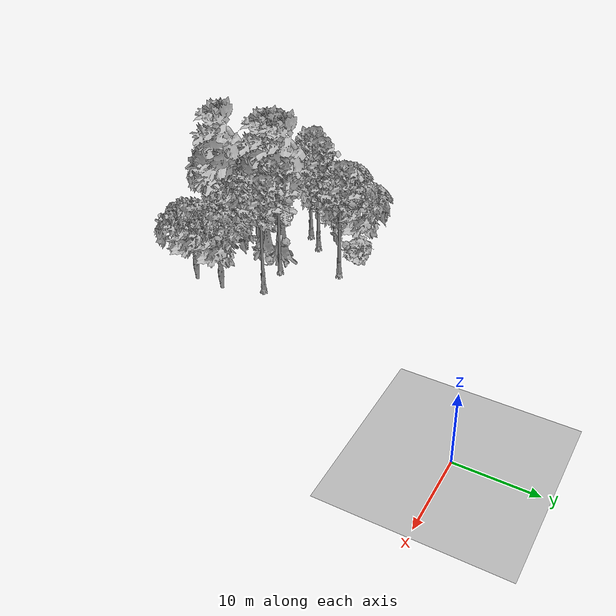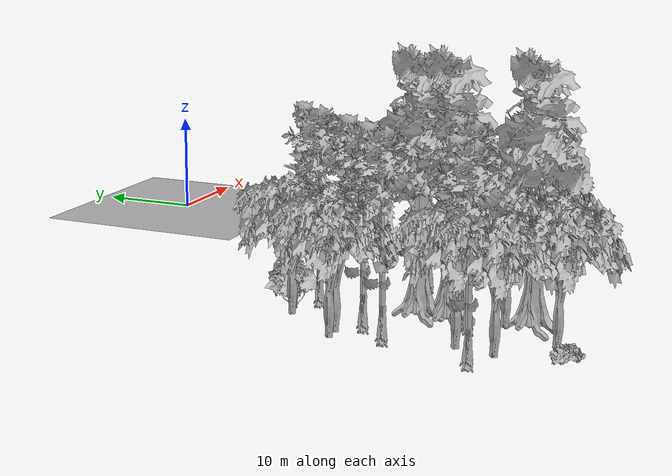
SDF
<sdf version="1.7">
 <world name="default">
  <model name="ground_plane">
   <static>1</static>
   <link name="link">
    <collision name="collision">
     <geometry><plane><normal>0 0 1</normal><size>100 100</size></plane></geometry>
     <surface><contact><ode><min_depth>0.01</min_depth><max_vel>0</max_vel></ode></contact></surface>
    </collision>
    <visual name="grass">
     <cast_shadows>0</cast_shadows>
     <geometry>
      <mesh>
       <scale>0.41000000000000003 0.41000000000000003 0.1</scale>
       <uri>file://grass_plane/meshes/grass_plane.dae</uri>
      </mesh>
     </geometry>
    </visual>
   </link>
  </model>
  <model name="Tree 0">
   <static>1</static>
   <pose>-23.924865385319332 -39.56324629947811 0 1.57079 -0 0</pose>
   <link name="link">
    <collision name="collision">
     <geometry><mesh><scale>5 5 5</scale><uri>model://tree_9/meshes/tree_9.obj</uri></mesh></geometry>
    </collision>
    <visual name="visual">
     <geometry><mesh><scale>5 5 5</scale><uri>model://tree_9/meshes/tree_9.obj</uri></mesh></geometry>
    </visual>
   </link>
  </model>
  <model name="Tree 12">
   <static>1</static>
   <pose>-33.84470445783158 -42.91395990194694 0 1.57079 -0 0</pose>
   <link name="link">
    <collision name="collision">
     <geometry><mesh><scale>5 5 5</scale><uri>model://tree_9/meshes/tree_9.obj</uri></mesh></geometry>
    </collision>
    <visual name="visual">
     <geometry><mesh><scale>5 5 5</scale><uri>model://tree_9/meshes/tree_9.obj</uri></mesh></geometry>
    </visual>
   </link>
  </model>
  <model name="Tree 28">
   <static>1</static>
   <pose>-26.23139387876234 -40.70543061842851 0 1.57079 -0 0</pose>
   <link name="link">
    <collision name="collision">
     <geometry><mesh><scale>5 5 5</scale><uri>model://tree_9/meshes/tree_9.obj</uri></mesh></geometry>
    </collision>
    <visual name="visual">
     <geometry><mesh><scale>5 5 5</scale><uri>model://tree_9/meshes/tree_9.obj</uri></mesh></geometry>
    </visual>
   </link>
  </model>
  <model name="Tree 47">
   <static>1</static>
   <pose>-24.82613827071071 -26.96435486488531 0 1.57079 -0 0</pose>
   <link name="link">
    <collision name="collision">
     <geometry><mesh><scale>5 5 5</scale><uri>model://tree_9/meshes/tree_9.obj</uri></mesh></geometry>
    </collision>
    <visual name="visual">
     <geometry><mesh><scale>5 5 5</scale><uri>model://tree_9/meshes/tree_9.obj</uri></mesh></geometry>
    </visual>
   </link>
  </model>
  <model name="Tree 54">
   <static>1</static>
   <pose>-21.69497430200028 -34.57880158267642 0 1.57079 -0 0</pose>
   <link name="link">
    <collision name="collision">
     <geometry><mesh><scale>5 5 5</scale><uri>model://tree_9/meshes/tree_9.obj</uri></mesh></geometry>
    </collision>
    <visual name="visual">
     <geometry><mesh><scale>5 5 5</scale><uri>model://tree_9/meshes/tree_9.obj</uri></mesh></geometry>
    </visual>
   </link>
  </model>
  <model name="Tree 197">
   <static>1</static>
   <pose>-31.505034450342166 -35.21010145878371 0 1.57079 -0 0</pose>
   <link name="link">
    <collision name="collision">
     <geometry><mesh><scale>5 5 5</scale><uri>model://tree_9/meshes/tree_9.obj</uri></mesh></geometry>
    </collision>
    <visual name="visual">
     <geometry><mesh><scale>5 5 5</scale><uri>model://tree_9/meshes/tree_9.obj</uri></mesh></geometry>
    </visual>
   </link>
  </model>
  <model name="Tree 208">
   <static>1</static>
   <pose>-24.39863821705377 -38.54482477718747 0 1.57079 -0 0</pose>
   <link name="link">
    <collision name="collision">
     <geometry><mesh><scale>5 5 5</scale><uri>model://tree_4/meshes/tree_4.obj</uri></mesh></geometry>
    </collision>
    <visual name="visual">
     <geometry><mesh><scale>5 5 5</scale><uri>model://tree_4/meshes/tree_4.obj</uri></mesh></geometry>
    </visual>
   </link>
  </model>
  <model name="Tree 217">
   <static>1</static>
   <pose>-31.69886925289042 -41.27076005451691 0 1.57079 -0 0</pose>
   <link name="link">
    <collision name="collision">
     <geometry><mesh><scale>5 5 5</scale><uri>model://tree_2/meshes/tree_2.obj</uri></mesh></geometry>
    </collision>
    <visual name="visual">
     <geometry><mesh><scale>5 5 5</scale><uri>model://tree_2/meshes/tree_2.obj</uri></mesh></geometry>
    </visual>
   </link>
  </model>
  <model name="Tree 218">
   <static>1</static>
   <pose>-24.39783169195416 -35.90968024163579 0 1.57079 -0 0</pose>
   <link name="link">
    <collision name="collision">
     <geometry><mesh><scale>5 5 5</scale><uri>model://tree_4/meshes/tree_4.obj</uri></mesh></geometry>
    </collision>
    <visual name="visual">
     <geometry><mesh><scale>5 5 5</scale><uri>model://tree_4/meshes/tree_4.obj</uri></mesh></geometry>
    </visual>
   </link>
  </model>
  <model name="Tree 221">
   <static>1</static>
   <pose>-16.924811058316507 -34.29193425043087 0 1.57079 -0 0</pose>
   <link name="link">
    <collision name="collision">
     <geometry><mesh><scale>5 5 5</scale><uri>model://tree_9/meshes/tree_9.obj</uri></mesh></geometry>
    </collision>
    <visual name="visual">
     <geometry><mesh><scale>5 5 5</scale><uri>model://tree_9/meshes/tree_9.obj</uri></mesh></geometry>
    </visual>
   </link>
  </model>
  <model name="Tree 255">
   <static>1</static>
   <pose>-31.914594202238696 -31.326650412213976 0 1.57079 -0 0</pose>
   <link name="link">
    <collision name="collision">
     <geometry><mesh><scale>5 5 5</scale><uri>model://tree_2/meshes/tree_2.obj</uri></mesh></geometry>
    </collision>
    <visual name="visual">
     <geometry><mesh><scale>5 5 5</scale><uri>model://tree_2/meshes/tree_2.obj</uri></mesh></geometry>
    </visual>
   </link>
  </model>
  <model name="Tree 269">
   <static>1</static>
   <pose>-29.345398339270396 -26.36204800964158 0 1.57079 -0 0</pose>
   <link name="link">
    <collision name="collision">
     <geometry><mesh><scale>5 5 5</scale><uri>model://tree_2/meshes/tree_2.obj</uri></mesh></geometry>
    </collision>
    <visual name="visual">
     <geometry><mesh><scale>5 5 5</scale><uri>model://tree_2/meshes/tree_2.obj</uri></mesh></geometry>
    </visual>
   </link>
  </model>
  <model name="Tree 297">
   <static>1</static>
   <pose>-25.368418844194505 -43.520345476886945 0 1.57079 -0 0</pose>
   <link name="link">
    <collision name="collision">
     <geometry><mesh><scale>5 5 5</scale><uri>model://tree_2/meshes/tree_2.obj</uri></mesh></geometry>
    </collision>
    <visual name="visual">
     <geometry><mesh><scale>5 5 5</scale><uri>model://tree_2/meshes/tree_2.obj</uri></mesh></geometry>
    </visual>
   </link>
  </model>
  <model name="Tree 346">
   <static>1</static>
   <pose>-33.28938446052771 -31.3530799619786 0 1.57079 -0 0</pose>
   <link name="link">
    <collision name="collision">
     <geometry><mesh><scale>5 5 5</scale><uri>model://tree_2/meshes/tree_2.obj</uri></mesh></geometry>
    </collision>
    <visual name="visual">
     <geometry><mesh><scale>5 5 5</scale><uri>model://tree_2/meshes/tree_2.obj</uri></mesh></geometry>
    </visual>
   </link>
  </model>
  <model name="Tree 398">
   <static>1</static>
   <pose>-23.70282556247734 -45.391071159141745 0 1.57079 -0 0</pose>
   <link name="link">
    <collision name="collision">
     <geometry><mesh><scale>5 5 5</scale><uri>model://tree_4/meshes/tree_4.obj</uri></mesh></geometry>
    </collision>
    <visual name="visual">
     <geometry><mesh><scale>5 5 5</scale><uri>model://tree_4/meshes/tree_4.obj</uri></mesh></geometry>
    </visual>
   </link>
  </model>
  <model name="Tree 401">
   <static>1</static>
   <pose>-28.610480332034875 -48.491530875770025 0 1.57079 -0 0</pose>
   <link name="link">
    <collision name="collision">
     <geometry><mesh><scale>5 5 5</scale><uri>model://tree_2/meshes/tree_2.obj</uri></mesh></geometry>
    </collision>
    <visual name="visual">
     <geometry><mesh><scale>5 5 5</scale><uri>model://tree_2/meshes/tree_2.obj</uri></mesh></geometry>
    </visual>
   </link>
  </model>
  <model name="Tree 421">
   <static>1</static>
   <pose>-32.24264147268471 -44.48523333174012 0 1.57079 -0 0</pose>
   <link name="link">
    <collision name="collision">
     <geometry><mesh><scale>5 5 5</scale><uri>model://tree_2/meshes/tree_2.obj</uri></mesh></geometry>
    </collision>
    <visual name="visual">
     <geometry><mesh><scale>5 5 5</scale><uri>model://tree_2/meshes/tree_2.obj</uri></mesh></geometry>
    </visual>
   </link>
  </model>
  <model name="Tree 444">
   <static>1</static>
   <pose>-14.871752063153558 -43.687005162348584 0 1.57079 -0 0</pose>
   <link name="link">
    <collision name="collision">
     <geometry><mesh><scale>5 5 5</scale><uri>model://tree_2/meshes/tree_2.obj</uri></mesh></geometry>
    </collision>
    <visual name="visual">
     <geometry><mesh><scale>5 5 5</scale><uri>model://tree_2/meshes/tree_2.obj</uri></mesh></geometry>
    </visual>
   </link>
  </model>
  <model name="Tree 474">
   <static>1</static>
   <pose>-14.716035865636627 -39.50035466829689 0 1.57079 -0 0</pose>
   <link name="link">
    <collision name="collision">
     <geometry><mesh><scale>5 5 5</scale><uri>model://tree_2/meshes/tree_2.obj</uri></mesh></geometry>
    </collision>
    <visual name="visual">
     <geometry><mesh><scale>5 5 5</scale><uri>model://tree_2/meshes/tree_2.obj</uri></mesh></geometry>
    </visual>
   </link>
  </model>
  <model name="Tree 477">
   <static>1</static>
   <pose>-29.311655400266712 -32.73654182018805 0 1.57079 -0 0</pose>
   <link name="link">
    <collision name="collision">
     <geometry><mesh><scale>5 5 5</scale><uri>model://tree_9/meshes/tree_9.obj</uri></mesh></geometry>
    </collision>
    <visual name="visual">
     <geometry><mesh><scale>5 5 5</scale><uri>model://tree_9/meshes/tree_9.obj</uri></mesh></geometry>
    </visual>
   </link>
  </model>
  <model name="Bush 37">
   <static>1</static>
   <pose>-27.852431981254718 -26.038052590375283 0 1.57079 -0 0</pose>
   <link name="link">
    <collision name="collision">
     <geometry><mesh><scale>2 2 2</scale><uri>model://bush_1/meshes/bush_1.obj</uri></mesh></geometry>
    </collision>
    <visual name="visual">
     <geometry><mesh><scale>5 5 5</scale><uri>model://bush_1/meshes/bush_1.obj</uri></mesh></geometry>
    </visual>
   </link>
  </model>
  <model name="Bush 82">
   <static>1</static>
   <pose>-30.1921221231745 -49.6412595166143 0 1.57079 -0 0</pose>
   <link name="link">
    <collision name="collision">
     <geometry><mesh><scale>2 2 2</scale><uri>model://bush_2/meshes/bush_2.obj</uri></mesh></geometry>
    </collision>
    <visual name="visual">
     <geometry><mesh><scale>5 5 5</scale><uri>model://bush_2/meshes/bush_2.obj</uri></mesh></geometry>
    </visual>
   </link>
  </model>
 </world>
</sdf>
